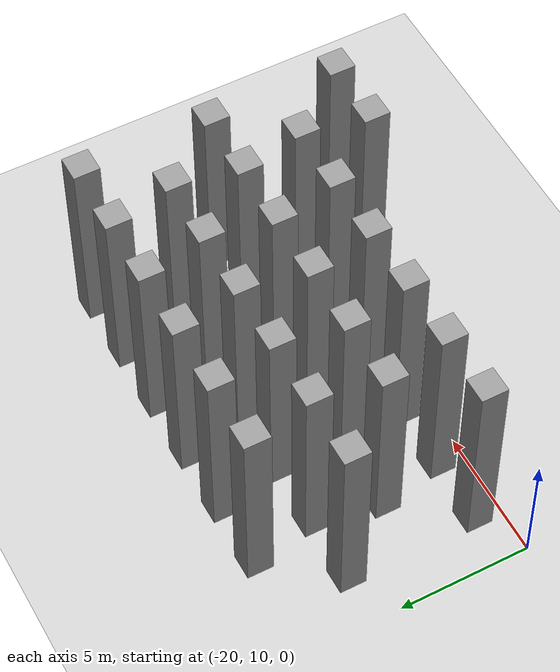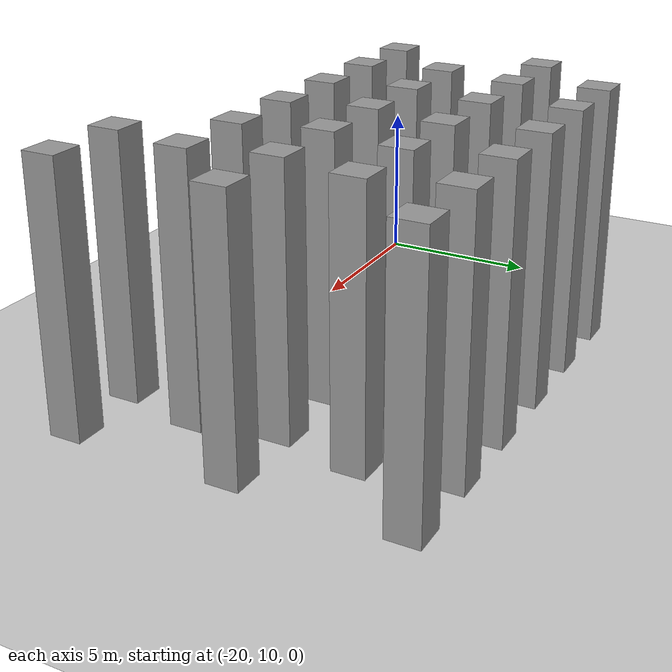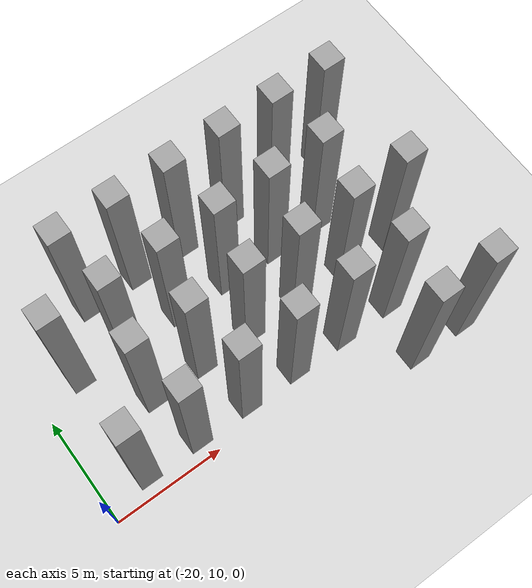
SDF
<sdf version="1.7">
 <world name="default">
  <model name="ground_plane">
   <static>1</static>
   <link name="link">
    <collision name="collision">
     <geometry><plane><normal>0 0 1</normal><size>100 100</size></plane></geometry>
     <surface>
      <contact><collide_bitmask>65535</collide_bitmask></contact>
      <friction><ode><mu>100</mu><mu2>50</mu2></ode></friction>
     </surface>
    </collision>
    <visual name="visual">
     <cast_shadows>0</cast_shadows>
     <geometry><plane><normal>0 0 1</normal><size>100 100</size></plane></geometry>
     <material>
      <script><uri>file://media/materials/scripts/gazebo.material</uri><name>Gazebo/Grey</name></script>
     </material>
    </visual>
   </link>
  </model>
  <model name="unit_box_static165">
   <link name="link">
    <inertial>
     <mass>1</mass>
     <inertia>
      <ixx>0.166667</ixx>
      <ixy>0</ixy>
      <ixz>0</ixz>
      <iyy>0.166667</iyy>
      <iyz>0</iyz>
      <izz>0.166667</izz>
     </inertia>
    </inertial>
    <visual name="visual">
     <geometry><box><size>1 1 8</size></box></geometry>
     <material>
      <script><name>Gazebo/Grey</name><uri>file://media/materials/scripts/gazebo.material</uri></script>
      <shader type="pixel"/>
     </material>
    </visual>
    <collision name="collision">
     <geometry><box><size>1 1 8</size></box></geometry>
     <surface>
      <friction>
       <ode><mu>1</mu><mu2>1</mu2><fdir1>0 0 0</fdir1><slip1>0</slip1><slip2>0</slip2></ode>
       <torsional>
        <coefficient>1</coefficient>
        <patch_radius>0</patch_radius>
        <surface_radius>0</surface_radius>
        <use_patch_radius>1</use_patch_radius>
        <ode><slip>0</slip></ode>
       </torsional>
      </friction>
      <bounce><restitution_coefficient>0</restitution_coefficient><threshold>1e+06</threshold></bounce>
      <contact>
       <collide_without_contact>0</collide_without_contact>
       <collide_without_contact_bitmask>1</collide_without_contact_bitmask>
       <collide_bitmask>1</collide_bitmask>
       <ode>
        <soft_cfm>0</soft_cfm>
        <soft_erp>0.2</soft_erp>
        <kp>1e+13</kp>
        <kd>1</kd>
        <max_vel>0.01</max_vel>
        <min_depth>0</min_depth>
       </ode>
       <bullet>
        <split_impulse>1</split_impulse>
        <split_impulse_penetration_threshold>-0.01</split_impulse_penetration_threshold>
        <soft_cfm>0</soft_cfm>
        <soft_erp>0.2</soft_erp>
        <kp>1e+13</kp>
        <kd>1</kd>
       </bullet>
      </contact>
     </surface>
    </collision>
   </link>
   <static>1</static>
   <pose>-6 8.5 4 0 -0 0</pose>
  </model>
  <model name="unit_box_static166">
   <link name="link">
    <inertial>
     <mass>1</mass>
     <inertia>
      <ixx>0.166667</ixx>
      <ixy>0</ixy>
      <ixz>0</ixz>
      <iyy>0.166667</iyy>
      <iyz>0</iyz>
      <izz>0.166667</izz>
     </inertia>
    </inertial>
    <visual name="visual">
     <geometry><box><size>1 1 8</size></box></geometry>
     <material>
      <script><name>Gazebo/Grey</name><uri>file://media/materials/scripts/gazebo.material</uri></script>
      <shader type="pixel"/>
     </material>
    </visual>
    <collision name="collision">
     <geometry><box><size>1 1 8</size></box></geometry>
     <surface>
      <friction>
       <ode><mu>1</mu><mu2>1</mu2><fdir1>0 0 0</fdir1><slip1>0</slip1><slip2>0</slip2></ode>
       <torsional>
        <coefficient>1</coefficient>
        <patch_radius>0</patch_radius>
        <surface_radius>0</surface_radius>
        <use_patch_radius>1</use_patch_radius>
        <ode><slip>0</slip></ode>
       </torsional>
      </friction>
      <bounce><restitution_coefficient>0</restitution_coefficient><threshold>1e+06</threshold></bounce>
      <contact>
       <collide_without_contact>0</collide_without_contact>
       <collide_without_contact_bitmask>1</collide_without_contact_bitmask>
       <collide_bitmask>1</collide_bitmask>
       <ode>
        <soft_cfm>0</soft_cfm>
        <soft_erp>0.2</soft_erp>
        <kp>1e+13</kp>
        <kd>1</kd>
        <max_vel>0.01</max_vel>
        <min_depth>0</min_depth>
       </ode>
       <bullet>
        <split_impulse>1</split_impulse>
        <split_impulse_penetration_threshold>-0.01</split_impulse_penetration_threshold>
        <soft_cfm>0</soft_cfm>
        <soft_erp>0.2</soft_erp>
        <kp>1e+13</kp>
        <kd>1</kd>
       </bullet>
      </contact>
     </surface>
    </collision>
   </link>
   <static>1</static>
   <pose>-3.5 8.5 4 0 -0 0</pose>
  </model>
  <model name="unit_box_static175">
   <link name="link">
    <inertial>
     <mass>1</mass>
     <inertia>
      <ixx>0.166667</ixx>
      <ixy>0</ixy>
      <ixz>0</ixz>
      <iyy>0.166667</iyy>
      <iyz>0</iyz>
      <izz>0.166667</izz>
     </inertia>
    </inertial>
    <visual name="visual">
     <geometry><box><size>1 1 8</size></box></geometry>
     <material>
      <script><name>Gazebo/Grey</name><uri>file://media/materials/scripts/gazebo.material</uri></script>
      <shader type="pixel"/>
     </material>
    </visual>
    <collision name="collision">
     <geometry><box><size>1 1 8</size></box></geometry>
     <surface>
      <friction>
       <ode><mu>1</mu><mu2>1</mu2><fdir1>0 0 0</fdir1><slip1>0</slip1><slip2>0</slip2></ode>
       <torsional>
        <coefficient>1</coefficient>
        <patch_radius>0</patch_radius>
        <surface_radius>0</surface_radius>
        <use_patch_radius>1</use_patch_radius>
        <ode><slip>0</slip></ode>
       </torsional>
      </friction>
      <bounce><restitution_coefficient>0</restitution_coefficient><threshold>1e+06</threshold></bounce>
      <contact>
       <collide_without_contact>0</collide_without_contact>
       <collide_without_contact_bitmask>1</collide_without_contact_bitmask>
       <collide_bitmask>1</collide_bitmask>
       <ode>
        <soft_cfm>0</soft_cfm>
        <soft_erp>0.2</soft_erp>
        <kp>1e+13</kp>
        <kd>1</kd>
        <max_vel>0.01</max_vel>
        <min_depth>0</min_depth>
       </ode>
       <bullet>
        <split_impulse>1</split_impulse>
        <split_impulse_penetration_threshold>-0.01</split_impulse_penetration_threshold>
        <soft_cfm>0</soft_cfm>
        <soft_erp>0.2</soft_erp>
        <kp>1e+13</kp>
        <kd>1</kd>
       </bullet>
      </contact>
     </surface>
    </collision>
   </link>
   <static>1</static>
   <pose>-18 11 4 0 -0 0</pose>
  </model>
  <model name="unit_box_static176">
   <link name="link">
    <inertial>
     <mass>1</mass>
     <inertia>
      <ixx>0.166667</ixx>
      <ixy>0</ixy>
      <ixz>0</ixz>
      <iyy>0.166667</iyy>
      <iyz>0</iyz>
      <izz>0.166667</izz>
     </inertia>
    </inertial>
    <visual name="visual">
     <geometry><box><size>1 1 8</size></box></geometry>
     <material>
      <script><name>Gazebo/Grey</name><uri>file://media/materials/scripts/gazebo.material</uri></script>
      <shader type="pixel"/>
     </material>
    </visual>
    <collision name="collision">
     <geometry><box><size>1 1 8</size></box></geometry>
     <surface>
      <friction>
       <ode><mu>1</mu><mu2>1</mu2><fdir1>0 0 0</fdir1><slip1>0</slip1><slip2>0</slip2></ode>
       <torsional>
        <coefficient>1</coefficient>
        <patch_radius>0</patch_radius>
        <surface_radius>0</surface_radius>
        <use_patch_radius>1</use_patch_radius>
        <ode><slip>0</slip></ode>
       </torsional>
      </friction>
      <bounce><restitution_coefficient>0</restitution_coefficient><threshold>1e+06</threshold></bounce>
      <contact>
       <collide_without_contact>0</collide_without_contact>
       <collide_without_contact_bitmask>1</collide_without_contact_bitmask>
       <collide_bitmask>1</collide_bitmask>
       <ode>
        <soft_cfm>0</soft_cfm>
        <soft_erp>0.2</soft_erp>
        <kp>1e+13</kp>
        <kd>1</kd>
        <max_vel>0.01</max_vel>
        <min_depth>0</min_depth>
       </ode>
       <bullet>
        <split_impulse>1</split_impulse>
        <split_impulse_penetration_threshold>-0.01</split_impulse_penetration_threshold>
        <soft_cfm>0</soft_cfm>
        <soft_erp>0.2</soft_erp>
        <kp>1e+13</kp>
        <kd>1</kd>
       </bullet>
      </contact>
     </surface>
    </collision>
   </link>
   <static>1</static>
   <pose>-15.5 11 4 0 -0 0</pose>
  </model>
  <model name="unit_box_static177">
   <link name="link">
    <inertial>
     <mass>1</mass>
     <inertia>
      <ixx>0.166667</ixx>
      <ixy>0</ixy>
      <ixz>0</ixz>
      <iyy>0.166667</iyy>
      <iyz>0</iyz>
      <izz>0.166667</izz>
     </inertia>
    </inertial>
    <visual name="visual">
     <geometry><box><size>1 1 8</size></box></geometry>
     <material>
      <script><name>Gazebo/Grey</name><uri>file://media/materials/scripts/gazebo.material</uri></script>
      <shader type="pixel"/>
     </material>
    </visual>
    <collision name="collision">
     <geometry><box><size>1 1 8</size></box></geometry>
     <surface>
      <friction>
       <ode><mu>1</mu><mu2>1</mu2><fdir1>0 0 0</fdir1><slip1>0</slip1><slip2>0</slip2></ode>
       <torsional>
        <coefficient>1</coefficient>
        <patch_radius>0</patch_radius>
        <surface_radius>0</surface_radius>
        <use_patch_radius>1</use_patch_radius>
        <ode><slip>0</slip></ode>
       </torsional>
      </friction>
      <bounce><restitution_coefficient>0</restitution_coefficient><threshold>1e+06</threshold></bounce>
      <contact>
       <collide_without_contact>0</collide_without_contact>
       <collide_without_contact_bitmask>1</collide_without_contact_bitmask>
       <collide_bitmask>1</collide_bitmask>
       <ode>
        <soft_cfm>0</soft_cfm>
        <soft_erp>0.2</soft_erp>
        <kp>1e+13</kp>
        <kd>1</kd>
        <max_vel>0.01</max_vel>
        <min_depth>0</min_depth>
       </ode>
       <bullet>
        <split_impulse>1</split_impulse>
        <split_impulse_penetration_threshold>-0.01</split_impulse_penetration_threshold>
        <soft_cfm>0</soft_cfm>
        <soft_erp>0.2</soft_erp>
        <kp>1e+13</kp>
        <kd>1</kd>
       </bullet>
      </contact>
     </surface>
    </collision>
   </link>
   <static>1</static>
   <pose>-13 11 4 0 -0 0</pose>
  </model>
  <model name="unit_box_static178">
   <link name="link">
    <inertial>
     <mass>1</mass>
     <inertia>
      <ixx>0.166667</ixx>
      <ixy>0</ixy>
      <ixz>0</ixz>
      <iyy>0.166667</iyy>
      <iyz>0</iyz>
      <izz>0.166667</izz>
     </inertia>
    </inertial>
    <visual name="visual">
     <geometry><box><size>1 1 8</size></box></geometry>
     <material>
      <script><name>Gazebo/Grey</name><uri>file://media/materials/scripts/gazebo.material</uri></script>
      <shader type="pixel"/>
     </material>
    </visual>
    <collision name="collision">
     <geometry><box><size>1 1 8</size></box></geometry>
     <surface>
      <friction>
       <ode><mu>1</mu><mu2>1</mu2><fdir1>0 0 0</fdir1><slip1>0</slip1><slip2>0</slip2></ode>
       <torsional>
        <coefficient>1</coefficient>
        <patch_radius>0</patch_radius>
        <surface_radius>0</surface_radius>
        <use_patch_radius>1</use_patch_radius>
        <ode><slip>0</slip></ode>
       </torsional>
      </friction>
      <bounce><restitution_coefficient>0</restitution_coefficient><threshold>1e+06</threshold></bounce>
      <contact>
       <collide_without_contact>0</collide_without_contact>
       <collide_without_contact_bitmask>1</collide_without_contact_bitmask>
       <collide_bitmask>1</collide_bitmask>
       <ode>
        <soft_cfm>0</soft_cfm>
        <soft_erp>0.2</soft_erp>
        <kp>1e+13</kp>
        <kd>1</kd>
        <max_vel>0.01</max_vel>
        <min_depth>0</min_depth>
       </ode>
       <bullet>
        <split_impulse>1</split_impulse>
        <split_impulse_penetration_threshold>-0.01</split_impulse_penetration_threshold>
        <soft_cfm>0</soft_cfm>
        <soft_erp>0.2</soft_erp>
        <kp>1e+13</kp>
        <kd>1</kd>
       </bullet>
      </contact>
     </surface>
    </collision>
   </link>
   <static>1</static>
   <pose>-10.5 11 4 0 -0 0</pose>
  </model>
  <model name="unit_box_static179">
   <link name="link">
    <inertial>
     <mass>1</mass>
     <inertia>
      <ixx>0.166667</ixx>
      <ixy>0</ixy>
      <ixz>0</ixz>
      <iyy>0.166667</iyy>
      <iyz>0</iyz>
      <izz>0.166667</izz>
     </inertia>
    </inertial>
    <visual name="visual">
     <geometry><box><size>1 1 8</size></box></geometry>
     <material>
      <script><name>Gazebo/Grey</name><uri>file://media/materials/scripts/gazebo.material</uri></script>
      <shader type="pixel"/>
     </material>
    </visual>
    <collision name="collision">
     <geometry><box><size>1 1 8</size></box></geometry>
     <surface>
      <friction>
       <ode><mu>1</mu><mu2>1</mu2><fdir1>0 0 0</fdir1><slip1>0</slip1><slip2>0</slip2></ode>
       <torsional>
        <coefficient>1</coefficient>
        <patch_radius>0</patch_radius>
        <surface_radius>0</surface_radius>
        <use_patch_radius>1</use_patch_radius>
        <ode><slip>0</slip></ode>
       </torsional>
      </friction>
      <bounce><restitution_coefficient>0</restitution_coefficient><threshold>1e+06</threshold></bounce>
      <contact>
       <collide_without_contact>0</collide_without_contact>
       <collide_without_contact_bitmask>1</collide_without_contact_bitmask>
       <collide_bitmask>1</collide_bitmask>
       <ode>
        <soft_cfm>0</soft_cfm>
        <soft_erp>0.2</soft_erp>
        <kp>1e+13</kp>
        <kd>1</kd>
        <max_vel>0.01</max_vel>
        <min_depth>0</min_depth>
       </ode>
       <bullet>
        <split_impulse>1</split_impulse>
        <split_impulse_penetration_threshold>-0.01</split_impulse_penetration_threshold>
        <soft_cfm>0</soft_cfm>
        <soft_erp>0.2</soft_erp>
        <kp>1e+13</kp>
        <kd>1</kd>
       </bullet>
      </contact>
     </surface>
    </collision>
   </link>
   <static>1</static>
   <pose>-8 11 4 0 -0 0</pose>
  </model>
  <model name="unit_box_static180">
   <link name="link">
    <inertial>
     <mass>1</mass>
     <inertia>
      <ixx>0.166667</ixx>
      <ixy>0</ixy>
      <ixz>0</ixz>
      <iyy>0.166667</iyy>
      <iyz>0</iyz>
      <izz>0.166667</izz>
     </inertia>
    </inertial>
    <visual name="visual">
     <geometry><box><size>1 1 8</size></box></geometry>
     <material>
      <script><name>Gazebo/Grey</name><uri>file://media/materials/scripts/gazebo.material</uri></script>
      <shader type="pixel"/>
     </material>
    </visual>
    <collision name="collision">
     <geometry><box><size>1 1 8</size></box></geometry>
     <surface>
      <friction>
       <ode><mu>1</mu><mu2>1</mu2><fdir1>0 0 0</fdir1><slip1>0</slip1><slip2>0</slip2></ode>
       <torsional>
        <coefficient>1</coefficient>
        <patch_radius>0</patch_radius>
        <surface_radius>0</surface_radius>
        <use_patch_radius>1</use_patch_radius>
        <ode><slip>0</slip></ode>
       </torsional>
      </friction>
      <bounce><restitution_coefficient>0</restitution_coefficient><threshold>1e+06</threshold></bounce>
      <contact>
       <collide_without_contact>0</collide_without_contact>
       <collide_without_contact_bitmask>1</collide_without_contact_bitmask>
       <collide_bitmask>1</collide_bitmask>
       <ode>
        <soft_cfm>0</soft_cfm>
        <soft_erp>0.2</soft_erp>
        <kp>1e+13</kp>
        <kd>1</kd>
        <max_vel>0.01</max_vel>
        <min_depth>0</min_depth>
       </ode>
       <bullet>
        <split_impulse>1</split_impulse>
        <split_impulse_penetration_threshold>-0.01</split_impulse_penetration_threshold>
        <soft_cfm>0</soft_cfm>
        <soft_erp>0.2</soft_erp>
        <kp>1e+13</kp>
        <kd>1</kd>
       </bullet>
      </contact>
     </surface>
    </collision>
   </link>
   <static>1</static>
   <pose>-5.5 11 4 0 -0 0</pose>
  </model>
  <model name="unit_box_static190">
   <link name="link">
    <inertial>
     <mass>1</mass>
     <inertia>
      <ixx>0.166667</ixx>
      <ixy>0</ixy>
      <ixz>0</ixz>
      <iyy>0.166667</iyy>
      <iyz>0</iyz>
      <izz>0.166667</izz>
     </inertia>
    </inertial>
    <visual name="visual">
     <geometry><box><size>1 1 8</size></box></geometry>
     <material>
      <script><name>Gazebo/Grey</name><uri>file://media/materials/scripts/gazebo.material</uri></script>
      <shader type="pixel"/>
     </material>
    </visual>
    <collision name="collision">
     <geometry><box><size>1 1 8</size></box></geometry>
     <surface>
      <friction>
       <ode><mu>1</mu><mu2>1</mu2><fdir1>0 0 0</fdir1><slip1>0</slip1><slip2>0</slip2></ode>
       <torsional>
        <coefficient>1</coefficient>
        <patch_radius>0</patch_radius>
        <surface_radius>0</surface_radius>
        <use_patch_radius>1</use_patch_radius>
        <ode><slip>0</slip></ode>
       </torsional>
      </friction>
      <bounce><restitution_coefficient>0</restitution_coefficient><threshold>1e+06</threshold></bounce>
      <contact>
       <collide_without_contact>0</collide_without_contact>
       <collide_without_contact_bitmask>1</collide_without_contact_bitmask>
       <collide_bitmask>1</collide_bitmask>
       <ode>
        <soft_cfm>0</soft_cfm>
        <soft_erp>0.2</soft_erp>
        <kp>1e+13</kp>
        <kd>1</kd>
        <max_vel>0.01</max_vel>
        <min_depth>0</min_depth>
       </ode>
       <bullet>
        <split_impulse>1</split_impulse>
        <split_impulse_penetration_threshold>-0.01</split_impulse_penetration_threshold>
        <soft_cfm>0</soft_cfm>
        <soft_erp>0.2</soft_erp>
        <kp>1e+13</kp>
        <kd>1</kd>
       </bullet>
      </contact>
     </surface>
    </collision>
   </link>
   <static>1</static>
   <pose>-16 13.5 4 0 -0 0</pose>
  </model>
  <model name="unit_box_static191">
   <link name="link">
    <inertial>
     <mass>1</mass>
     <inertia>
      <ixx>0.166667</ixx>
      <ixy>0</ixy>
      <ixz>0</ixz>
      <iyy>0.166667</iyy>
      <iyz>0</iyz>
      <izz>0.166667</izz>
     </inertia>
    </inertial>
    <visual name="visual">
     <geometry><box><size>1 1 8</size></box></geometry>
     <material>
      <script><name>Gazebo/Grey</name><uri>file://media/materials/scripts/gazebo.material</uri></script>
      <shader type="pixel"/>
     </material>
    </visual>
    <collision name="collision">
     <geometry><box><size>1 1 8</size></box></geometry>
     <surface>
      <friction>
       <ode><mu>1</mu><mu2>1</mu2><fdir1>0 0 0</fdir1><slip1>0</slip1><slip2>0</slip2></ode>
       <torsional>
        <coefficient>1</coefficient>
        <patch_radius>0</patch_radius>
        <surface_radius>0</surface_radius>
        <use_patch_radius>1</use_patch_radius>
        <ode><slip>0</slip></ode>
       </torsional>
      </friction>
      <bounce><restitution_coefficient>0</restitution_coefficient><threshold>1e+06</threshold></bounce>
      <contact>
       <collide_without_contact>0</collide_without_contact>
       <collide_without_contact_bitmask>1</collide_without_contact_bitmask>
       <collide_bitmask>1</collide_bitmask>
       <ode>
        <soft_cfm>0</soft_cfm>
        <soft_erp>0.2</soft_erp>
        <kp>1e+13</kp>
        <kd>1</kd>
        <max_vel>0.01</max_vel>
        <min_depth>0</min_depth>
       </ode>
       <bullet>
        <split_impulse>1</split_impulse>
        <split_impulse_penetration_threshold>-0.01</split_impulse_penetration_threshold>
        <soft_cfm>0</soft_cfm>
        <soft_erp>0.2</soft_erp>
        <kp>1e+13</kp>
        <kd>1</kd>
       </bullet>
      </contact>
     </surface>
    </collision>
   </link>
   <static>1</static>
   <pose>-13.5 13.5 4 0 -0 0</pose>
  </model>
  <model name="unit_box_static192">
   <link name="link">
    <inertial>
     <mass>1</mass>
     <inertia>
      <ixx>0.166667</ixx>
      <ixy>0</ixy>
      <ixz>0</ixz>
      <iyy>0.166667</iyy>
      <iyz>0</iyz>
      <izz>0.166667</izz>
     </inertia>
    </inertial>
    <visual name="visual">
     <geometry><box><size>1 1 8</size></box></geometry>
     <material>
      <script><name>Gazebo/Grey</name><uri>file://media/materials/scripts/gazebo.material</uri></script>
      <shader type="pixel"/>
     </material>
    </visual>
    <collision name="collision">
     <geometry><box><size>1 1 8</size></box></geometry>
     <surface>
      <friction>
       <ode><mu>1</mu><mu2>1</mu2><fdir1>0 0 0</fdir1><slip1>0</slip1><slip2>0</slip2></ode>
       <torsional>
        <coefficient>1</coefficient>
        <patch_radius>0</patch_radius>
        <surface_radius>0</surface_radius>
        <use_patch_radius>1</use_patch_radius>
        <ode><slip>0</slip></ode>
       </torsional>
      </friction>
      <bounce><restitution_coefficient>0</restitution_coefficient><threshold>1e+06</threshold></bounce>
      <contact>
       <collide_without_contact>0</collide_without_contact>
       <collide_without_contact_bitmask>1</collide_without_contact_bitmask>
       <collide_bitmask>1</collide_bitmask>
       <ode>
        <soft_cfm>0</soft_cfm>
        <soft_erp>0.2</soft_erp>
        <kp>1e+13</kp>
        <kd>1</kd>
        <max_vel>0.01</max_vel>
        <min_depth>0</min_depth>
       </ode>
       <bullet>
        <split_impulse>1</split_impulse>
        <split_impulse_penetration_threshold>-0.01</split_impulse_penetration_threshold>
        <soft_cfm>0</soft_cfm>
        <soft_erp>0.2</soft_erp>
        <kp>1e+13</kp>
        <kd>1</kd>
       </bullet>
      </contact>
     </surface>
    </collision>
   </link>
   <static>1</static>
   <pose>-11 13.5 4 0 -0 0</pose>
  </model>
  <model name="unit_box_static193">
   <link name="link">
    <inertial>
     <mass>1</mass>
     <inertia>
      <ixx>0.166667</ixx>
      <ixy>0</ixy>
      <ixz>0</ixz>
      <iyy>0.166667</iyy>
      <iyz>0</iyz>
      <izz>0.166667</izz>
     </inertia>
    </inertial>
    <visual name="visual">
     <geometry><box><size>1 1 8</size></box></geometry>
     <material>
      <script><name>Gazebo/Grey</name><uri>file://media/materials/scripts/gazebo.material</uri></script>
      <shader type="pixel"/>
     </material>
    </visual>
    <collision name="collision">
     <geometry><box><size>1 1 8</size></box></geometry>
     <surface>
      <friction>
       <ode><mu>1</mu><mu2>1</mu2><fdir1>0 0 0</fdir1><slip1>0</slip1><slip2>0</slip2></ode>
       <torsional>
        <coefficient>1</coefficient>
        <patch_radius>0</patch_radius>
        <surface_radius>0</surface_radius>
        <use_patch_radius>1</use_patch_radius>
        <ode><slip>0</slip></ode>
       </torsional>
      </friction>
      <bounce><restitution_coefficient>0</restitution_coefficient><threshold>1e+06</threshold></bounce>
      <contact>
       <collide_without_contact>0</collide_without_contact>
       <collide_without_contact_bitmask>1</collide_without_contact_bitmask>
       <collide_bitmask>1</collide_bitmask>
       <ode>
        <soft_cfm>0</soft_cfm>
        <soft_erp>0.2</soft_erp>
        <kp>1e+13</kp>
        <kd>1</kd>
        <max_vel>0.01</max_vel>
        <min_depth>0</min_depth>
       </ode>
       <bullet>
        <split_impulse>1</split_impulse>
        <split_impulse_penetration_threshold>-0.01</split_impulse_penetration_threshold>
        <soft_cfm>0</soft_cfm>
        <soft_erp>0.2</soft_erp>
        <kp>1e+13</kp>
        <kd>1</kd>
       </bullet>
      </contact>
     </surface>
    </collision>
   </link>
   <static>1</static>
   <pose>-8.5 13.5 4 0 -0 0</pose>
  </model>
  <model name="unit_box_static194">
   <link name="link">
    <inertial>
     <mass>1</mass>
     <inertia>
      <ixx>0.166667</ixx>
      <ixy>0</ixy>
      <ixz>0</ixz>
      <iyy>0.166667</iyy>
      <iyz>0</iyz>
      <izz>0.166667</izz>
     </inertia>
    </inertial>
    <visual name="visual">
     <geometry><box><size>1 1 8</size></box></geometry>
     <material>
      <script><name>Gazebo/Grey</name><uri>file://media/materials/scripts/gazebo.material</uri></script>
      <shader type="pixel"/>
     </material>
    </visual>
    <collision name="collision">
     <geometry><box><size>1 1 8</size></box></geometry>
     <surface>
      <friction>
       <ode><mu>1</mu><mu2>1</mu2><fdir1>0 0 0</fdir1><slip1>0</slip1><slip2>0</slip2></ode>
       <torsional>
        <coefficient>1</coefficient>
        <patch_radius>0</patch_radius>
        <surface_radius>0</surface_radius>
        <use_patch_radius>1</use_patch_radius>
        <ode><slip>0</slip></ode>
       </torsional>
      </friction>
      <bounce><restitution_coefficient>0</restitution_coefficient><threshold>1e+06</threshold></bounce>
      <contact>
       <collide_without_contact>0</collide_without_contact>
       <collide_without_contact_bitmask>1</collide_without_contact_bitmask>
       <collide_bitmask>1</collide_bitmask>
       <ode>
        <soft_cfm>0</soft_cfm>
        <soft_erp>0.2</soft_erp>
        <kp>1e+13</kp>
        <kd>1</kd>
        <max_vel>0.01</max_vel>
        <min_depth>0</min_depth>
       </ode>
       <bullet>
        <split_impulse>1</split_impulse>
        <split_impulse_penetration_threshold>-0.01</split_impulse_penetration_threshold>
        <soft_cfm>0</soft_cfm>
        <soft_erp>0.2</soft_erp>
        <kp>1e+13</kp>
        <kd>1</kd>
       </bullet>
      </contact>
     </surface>
    </collision>
   </link>
   <static>1</static>
   <pose>-6 13.5 4 0 -0 0</pose>
  </model>
  <model name="unit_box_static195">
   <link name="link">
    <inertial>
     <mass>1</mass>
     <inertia>
      <ixx>0.166667</ixx>
      <ixy>0</ixy>
      <ixz>0</ixz>
      <iyy>0.166667</iyy>
      <iyz>0</iyz>
      <izz>0.166667</izz>
     </inertia>
    </inertial>
    <visual name="visual">
     <geometry><box><size>1 1 8</size></box></geometry>
     <material>
      <script><name>Gazebo/Grey</name><uri>file://media/materials/scripts/gazebo.material</uri></script>
      <shader type="pixel"/>
     </material>
    </visual>
    <collision name="collision">
     <geometry><box><size>1 1 8</size></box></geometry>
     <surface>
      <friction>
       <ode><mu>1</mu><mu2>1</mu2><fdir1>0 0 0</fdir1><slip1>0</slip1><slip2>0</slip2></ode>
       <torsional>
        <coefficient>1</coefficient>
        <patch_radius>0</patch_radius>
        <surface_radius>0</surface_radius>
        <use_patch_radius>1</use_patch_radius>
        <ode><slip>0</slip></ode>
       </torsional>
      </friction>
      <bounce><restitution_coefficient>0</restitution_coefficient><threshold>1e+06</threshold></bounce>
      <contact>
       <collide_without_contact>0</collide_without_contact>
       <collide_without_contact_bitmask>1</collide_without_contact_bitmask>
       <collide_bitmask>1</collide_bitmask>
       <ode>
        <soft_cfm>0</soft_cfm>
        <soft_erp>0.2</soft_erp>
        <kp>1e+13</kp>
        <kd>1</kd>
        <max_vel>0.01</max_vel>
        <min_depth>0</min_depth>
       </ode>
       <bullet>
        <split_impulse>1</split_impulse>
        <split_impulse_penetration_threshold>-0.01</split_impulse_penetration_threshold>
        <soft_cfm>0</soft_cfm>
        <soft_erp>0.2</soft_erp>
        <kp>1e+13</kp>
        <kd>1</kd>
       </bullet>
      </contact>
     </surface>
    </collision>
   </link>
   <static>1</static>
   <pose>-3.5 13.5 4 0 -0 0</pose>
  </model>
  <model name="unit_box_static204">
   <link name="link">
    <inertial>
     <mass>1</mass>
     <inertia>
      <ixx>0.166667</ixx>
      <ixy>0</ixy>
      <ixz>0</ixz>
      <iyy>0.166667</iyy>
      <iyz>0</iyz>
      <izz>0.166667</izz>
     </inertia>
    </inertial>
    <visual name="visual">
     <geometry><box><size>1 1 8</size></box></geometry>
     <material>
      <script><name>Gazebo/Grey</name><uri>file://media/materials/scripts/gazebo.material</uri></script>
      <shader type="pixel"/>
     </material>
    </visual>
    <collision name="collision">
     <geometry><box><size>1 1 8</size></box></geometry>
     <surface>
      <friction>
       <ode><mu>1</mu><mu2>1</mu2><fdir1>0 0 0</fdir1><slip1>0</slip1><slip2>0</slip2></ode>
       <torsional>
        <coefficient>1</coefficient>
        <patch_radius>0</patch_radius>
        <surface_radius>0</surface_radius>
        <use_patch_radius>1</use_patch_radius>
        <ode><slip>0</slip></ode>
       </torsional>
      </friction>
      <bounce><restitution_coefficient>0</restitution_coefficient><threshold>1e+06</threshold></bounce>
      <contact>
       <collide_without_contact>0</collide_without_contact>
       <collide_without_contact_bitmask>1</collide_without_contact_bitmask>
       <collide_bitmask>1</collide_bitmask>
       <ode>
        <soft_cfm>0</soft_cfm>
        <soft_erp>0.2</soft_erp>
        <kp>1e+13</kp>
        <kd>1</kd>
        <max_vel>0.01</max_vel>
        <min_depth>0</min_depth>
       </ode>
       <bullet>
        <split_impulse>1</split_impulse>
        <split_impulse_penetration_threshold>-0.01</split_impulse_penetration_threshold>
        <soft_cfm>0</soft_cfm>
        <soft_erp>0.2</soft_erp>
        <kp>1e+13</kp>
        <kd>1</kd>
       </bullet>
      </contact>
     </surface>
    </collision>
   </link>
   <static>1</static>
   <pose>-18 16 4 0 -0 0</pose>
  </model>
  <model name="unit_box_static205">
   <link name="link">
    <inertial>
     <mass>1</mass>
     <inertia>
      <ixx>0.166667</ixx>
      <ixy>0</ixy>
      <ixz>0</ixz>
      <iyy>0.166667</iyy>
      <iyz>0</iyz>
      <izz>0.166667</izz>
     </inertia>
    </inertial>
    <visual name="visual">
     <geometry><box><size>1 1 8</size></box></geometry>
     <material>
      <script><name>Gazebo/Grey</name><uri>file://media/materials/scripts/gazebo.material</uri></script>
      <shader type="pixel"/>
     </material>
    </visual>
    <collision name="collision">
     <geometry><box><size>1 1 8</size></box></geometry>
     <surface>
      <friction>
       <ode><mu>1</mu><mu2>1</mu2><fdir1>0 0 0</fdir1><slip1>0</slip1><slip2>0</slip2></ode>
       <torsional>
        <coefficient>1</coefficient>
        <patch_radius>0</patch_radius>
        <surface_radius>0</surface_radius>
        <use_patch_radius>1</use_patch_radius>
        <ode><slip>0</slip></ode>
       </torsional>
      </friction>
      <bounce><restitution_coefficient>0</restitution_coefficient><threshold>1e+06</threshold></bounce>
      <contact>
       <collide_without_contact>0</collide_without_contact>
       <collide_without_contact_bitmask>1</collide_without_contact_bitmask>
       <collide_bitmask>1</collide_bitmask>
       <ode>
        <soft_cfm>0</soft_cfm>
        <soft_erp>0.2</soft_erp>
        <kp>1e+13</kp>
        <kd>1</kd>
        <max_vel>0.01</max_vel>
        <min_depth>0</min_depth>
       </ode>
       <bullet>
        <split_impulse>1</split_impulse>
        <split_impulse_penetration_threshold>-0.01</split_impulse_penetration_threshold>
        <soft_cfm>0</soft_cfm>
        <soft_erp>0.2</soft_erp>
        <kp>1e+13</kp>
        <kd>1</kd>
       </bullet>
      </contact>
     </surface>
    </collision>
   </link>
   <static>1</static>
   <pose>-15.5 16 4 0 -0 0</pose>
  </model>
  <model name="unit_box_static206">
   <link name="link">
    <inertial>
     <mass>1</mass>
     <inertia>
      <ixx>0.166667</ixx>
      <ixy>0</ixy>
      <ixz>0</ixz>
      <iyy>0.166667</iyy>
      <iyz>0</iyz>
      <izz>0.166667</izz>
     </inertia>
    </inertial>
    <visual name="visual">
     <geometry><box><size>1 1 8</size></box></geometry>
     <material>
      <script><name>Gazebo/Grey</name><uri>file://media/materials/scripts/gazebo.material</uri></script>
      <shader type="pixel"/>
     </material>
    </visual>
    <collision name="collision">
     <geometry><box><size>1 1 8</size></box></geometry>
     <surface>
      <friction>
       <ode><mu>1</mu><mu2>1</mu2><fdir1>0 0 0</fdir1><slip1>0</slip1><slip2>0</slip2></ode>
       <torsional>
        <coefficient>1</coefficient>
        <patch_radius>0</patch_radius>
        <surface_radius>0</surface_radius>
        <use_patch_radius>1</use_patch_radius>
        <ode><slip>0</slip></ode>
       </torsional>
      </friction>
      <bounce><restitution_coefficient>0</restitution_coefficient><threshold>1e+06</threshold></bounce>
      <contact>
       <collide_without_contact>0</collide_without_contact>
       <collide_without_contact_bitmask>1</collide_without_contact_bitmask>
       <collide_bitmask>1</collide_bitmask>
       <ode>
        <soft_cfm>0</soft_cfm>
        <soft_erp>0.2</soft_erp>
        <kp>1e+13</kp>
        <kd>1</kd>
        <max_vel>0.01</max_vel>
        <min_depth>0</min_depth>
       </ode>
       <bullet>
        <split_impulse>1</split_impulse>
        <split_impulse_penetration_threshold>-0.01</split_impulse_penetration_threshold>
        <soft_cfm>0</soft_cfm>
        <soft_erp>0.2</soft_erp>
        <kp>1e+13</kp>
        <kd>1</kd>
       </bullet>
      </contact>
     </surface>
    </collision>
   </link>
   <static>1</static>
   <pose>-13 16 4 0 -0 0</pose>
  </model>
  <model name="unit_box_static207">
   <link name="link">
    <inertial>
     <mass>1</mass>
     <inertia>
      <ixx>0.166667</ixx>
      <ixy>0</ixy>
      <ixz>0</ixz>
      <iyy>0.166667</iyy>
      <iyz>0</iyz>
      <izz>0.166667</izz>
     </inertia>
    </inertial>
    <visual name="visual">
     <geometry><box><size>1 1 8</size></box></geometry>
     <material>
      <script><name>Gazebo/Grey</name><uri>file://media/materials/scripts/gazebo.material</uri></script>
      <shader type="pixel"/>
     </material>
    </visual>
    <collision name="collision">
     <geometry><box><size>1 1 8</size></box></geometry>
     <surface>
      <friction>
       <ode><mu>1</mu><mu2>1</mu2><fdir1>0 0 0</fdir1><slip1>0</slip1><slip2>0</slip2></ode>
       <torsional>
        <coefficient>1</coefficient>
        <patch_radius>0</patch_radius>
        <surface_radius>0</surface_radius>
        <use_patch_radius>1</use_patch_radius>
        <ode><slip>0</slip></ode>
       </torsional>
      </friction>
      <bounce><restitution_coefficient>0</restitution_coefficient><threshold>1e+06</threshold></bounce>
      <contact>
       <collide_without_contact>0</collide_without_contact>
       <collide_without_contact_bitmask>1</collide_without_contact_bitmask>
       <collide_bitmask>1</collide_bitmask>
       <ode>
        <soft_cfm>0</soft_cfm>
        <soft_erp>0.2</soft_erp>
        <kp>1e+13</kp>
        <kd>1</kd>
        <max_vel>0.01</max_vel>
        <min_depth>0</min_depth>
       </ode>
       <bullet>
        <split_impulse>1</split_impulse>
        <split_impulse_penetration_threshold>-0.01</split_impulse_penetration_threshold>
        <soft_cfm>0</soft_cfm>
        <soft_erp>0.2</soft_erp>
        <kp>1e+13</kp>
        <kd>1</kd>
       </bullet>
      </contact>
     </surface>
    </collision>
   </link>
   <static>1</static>
   <pose>-10.5 16 4 0 -0 0</pose>
  </model>
  <model name="unit_box_static208">
   <link name="link">
    <inertial>
     <mass>1</mass>
     <inertia>
      <ixx>0.166667</ixx>
      <ixy>0</ixy>
      <ixz>0</ixz>
      <iyy>0.166667</iyy>
      <iyz>0</iyz>
      <izz>0.166667</izz>
     </inertia>
    </inertial>
    <visual name="visual">
     <geometry><box><size>1 1 8</size></box></geometry>
     <material>
      <script><name>Gazebo/Grey</name><uri>file://media/materials/scripts/gazebo.material</uri></script>
      <shader type="pixel"/>
     </material>
    </visual>
    <collision name="collision">
     <geometry><box><size>1 1 8</size></box></geometry>
     <surface>
      <friction>
       <ode><mu>1</mu><mu2>1</mu2><fdir1>0 0 0</fdir1><slip1>0</slip1><slip2>0</slip2></ode>
       <torsional>
        <coefficient>1</coefficient>
        <patch_radius>0</patch_radius>
        <surface_radius>0</surface_radius>
        <use_patch_radius>1</use_patch_radius>
        <ode><slip>0</slip></ode>
       </torsional>
      </friction>
      <bounce><restitution_coefficient>0</restitution_coefficient><threshold>1e+06</threshold></bounce>
      <contact>
       <collide_without_contact>0</collide_without_contact>
       <collide_without_contact_bitmask>1</collide_without_contact_bitmask>
       <collide_bitmask>1</collide_bitmask>
       <ode>
        <soft_cfm>0</soft_cfm>
        <soft_erp>0.2</soft_erp>
        <kp>1e+13</kp>
        <kd>1</kd>
        <max_vel>0.01</max_vel>
        <min_depth>0</min_depth>
       </ode>
       <bullet>
        <split_impulse>1</split_impulse>
        <split_impulse_penetration_threshold>-0.01</split_impulse_penetration_threshold>
        <soft_cfm>0</soft_cfm>
        <soft_erp>0.2</soft_erp>
        <kp>1e+13</kp>
        <kd>1</kd>
       </bullet>
      </contact>
     </surface>
    </collision>
   </link>
   <static>1</static>
   <pose>-8 16 4 0 -0 0</pose>
  </model>
  <model name="unit_box_static209">
   <link name="link">
    <inertial>
     <mass>1</mass>
     <inertia>
      <ixx>0.166667</ixx>
      <ixy>0</ixy>
      <ixz>0</ixz>
      <iyy>0.166667</iyy>
      <iyz>0</iyz>
      <izz>0.166667</izz>
     </inertia>
    </inertial>
    <visual name="visual">
     <geometry><box><size>1 1 8</size></box></geometry>
     <material>
      <script><name>Gazebo/Grey</name><uri>file://media/materials/scripts/gazebo.material</uri></script>
      <shader type="pixel"/>
     </material>
    </visual>
    <collision name="collision">
     <geometry><box><size>1 1 8</size></box></geometry>
     <surface>
      <friction>
       <ode><mu>1</mu><mu2>1</mu2><fdir1>0 0 0</fdir1><slip1>0</slip1><slip2>0</slip2></ode>
       <torsional>
        <coefficient>1</coefficient>
        <patch_radius>0</patch_radius>
        <surface_radius>0</surface_radius>
        <use_patch_radius>1</use_patch_radius>
        <ode><slip>0</slip></ode>
       </torsional>
      </friction>
      <bounce><restitution_coefficient>0</restitution_coefficient><threshold>1e+06</threshold></bounce>
      <contact>
       <collide_without_contact>0</collide_without_contact>
       <collide_without_contact_bitmask>1</collide_without_contact_bitmask>
       <collide_bitmask>1</collide_bitmask>
       <ode>
        <soft_cfm>0</soft_cfm>
        <soft_erp>0.2</soft_erp>
        <kp>1e+13</kp>
        <kd>1</kd>
        <max_vel>0.01</max_vel>
        <min_depth>0</min_depth>
       </ode>
       <bullet>
        <split_impulse>1</split_impulse>
        <split_impulse_penetration_threshold>-0.01</split_impulse_penetration_threshold>
        <soft_cfm>0</soft_cfm>
        <soft_erp>0.2</soft_erp>
        <kp>1e+13</kp>
        <kd>1</kd>
       </bullet>
      </contact>
     </surface>
    </collision>
   </link>
   <static>1</static>
   <pose>-5.5 16 4 0 -0 0</pose>
  </model>
  <model name="unit_box_static219">
   <link name="link">
    <inertial>
     <mass>1</mass>
     <inertia>
      <ixx>0.166667</ixx>
      <ixy>0</ixy>
      <ixz>0</ixz>
      <iyy>0.166667</iyy>
      <iyz>0</iyz>
      <izz>0.166667</izz>
     </inertia>
    </inertial>
    <visual name="visual">
     <geometry><box><size>1 1 8</size></box></geometry>
     <material>
      <script><name>Gazebo/Grey</name><uri>file://media/materials/scripts/gazebo.material</uri></script>
      <shader type="pixel"/>
     </material>
    </visual>
    <collision name="collision">
     <geometry><box><size>1 1 8</size></box></geometry>
     <surface>
      <friction>
       <ode><mu>1</mu><mu2>1</mu2><fdir1>0 0 0</fdir1><slip1>0</slip1><slip2>0</slip2></ode>
       <torsional>
        <coefficient>1</coefficient>
        <patch_radius>0</patch_radius>
        <surface_radius>0</surface_radius>
        <use_patch_radius>1</use_patch_radius>
        <ode><slip>0</slip></ode>
       </torsional>
      </friction>
      <bounce><restitution_coefficient>0</restitution_coefficient><threshold>1e+06</threshold></bounce>
      <contact>
       <collide_without_contact>0</collide_without_contact>
       <collide_without_contact_bitmask>1</collide_without_contact_bitmask>
       <collide_bitmask>1</collide_bitmask>
       <ode>
        <soft_cfm>0</soft_cfm>
        <soft_erp>0.2</soft_erp>
        <kp>1e+13</kp>
        <kd>1</kd>
        <max_vel>0.01</max_vel>
        <min_depth>0</min_depth>
       </ode>
       <bullet>
        <split_impulse>1</split_impulse>
        <split_impulse_penetration_threshold>-0.01</split_impulse_penetration_threshold>
        <soft_cfm>0</soft_cfm>
        <soft_erp>0.2</soft_erp>
        <kp>1e+13</kp>
        <kd>1</kd>
       </bullet>
      </contact>
     </surface>
    </collision>
   </link>
   <static>1</static>
   <pose>-16 18.5 4 0 -0 0</pose>
  </model>
  <model name="unit_box_static220">
   <link name="link">
    <inertial>
     <mass>1</mass>
     <inertia>
      <ixx>0.166667</ixx>
      <ixy>0</ixy>
      <ixz>0</ixz>
      <iyy>0.166667</iyy>
      <iyz>0</iyz>
      <izz>0.166667</izz>
     </inertia>
    </inertial>
    <visual name="visual">
     <geometry><box><size>1 1 8</size></box></geometry>
     <material>
      <script><name>Gazebo/Grey</name><uri>file://media/materials/scripts/gazebo.material</uri></script>
      <shader type="pixel"/>
     </material>
    </visual>
    <collision name="collision">
     <geometry><box><size>1 1 8</size></box></geometry>
     <surface>
      <friction>
       <ode><mu>1</mu><mu2>1</mu2><fdir1>0 0 0</fdir1><slip1>0</slip1><slip2>0</slip2></ode>
       <torsional>
        <coefficient>1</coefficient>
        <patch_radius>0</patch_radius>
        <surface_radius>0</surface_radius>
        <use_patch_radius>1</use_patch_radius>
        <ode><slip>0</slip></ode>
       </torsional>
      </friction>
      <bounce><restitution_coefficient>0</restitution_coefficient><threshold>1e+06</threshold></bounce>
      <contact>
       <collide_without_contact>0</collide_without_contact>
       <collide_without_contact_bitmask>1</collide_without_contact_bitmask>
       <collide_bitmask>1</collide_bitmask>
       <ode>
        <soft_cfm>0</soft_cfm>
        <soft_erp>0.2</soft_erp>
        <kp>1e+13</kp>
        <kd>1</kd>
        <max_vel>0.01</max_vel>
        <min_depth>0</min_depth>
       </ode>
       <bullet>
        <split_impulse>1</split_impulse>
        <split_impulse_penetration_threshold>-0.01</split_impulse_penetration_threshold>
        <soft_cfm>0</soft_cfm>
        <soft_erp>0.2</soft_erp>
        <kp>1e+13</kp>
        <kd>1</kd>
       </bullet>
      </contact>
     </surface>
    </collision>
   </link>
   <static>1</static>
   <pose>-13.5 18.5 4 0 -0 0</pose>
  </model>
  <model name="unit_box_static221">
   <link name="link">
    <inertial>
     <mass>1</mass>
     <inertia>
      <ixx>0.166667</ixx>
      <ixy>0</ixy>
      <ixz>0</ixz>
      <iyy>0.166667</iyy>
      <iyz>0</iyz>
      <izz>0.166667</izz>
     </inertia>
    </inertial>
    <visual name="visual">
     <geometry><box><size>1 1 8</size></box></geometry>
     <material>
      <script><name>Gazebo/Grey</name><uri>file://media/materials/scripts/gazebo.material</uri></script>
      <shader type="pixel"/>
     </material>
    </visual>
    <collision name="collision">
     <geometry><box><size>1 1 8</size></box></geometry>
     <surface>
      <friction>
       <ode><mu>1</mu><mu2>1</mu2><fdir1>0 0 0</fdir1><slip1>0</slip1><slip2>0</slip2></ode>
       <torsional>
        <coefficient>1</coefficient>
        <patch_radius>0</patch_radius>
        <surface_radius>0</surface_radius>
        <use_patch_radius>1</use_patch_radius>
        <ode><slip>0</slip></ode>
       </torsional>
      </friction>
      <bounce><restitution_coefficient>0</restitution_coefficient><threshold>1e+06</threshold></bounce>
      <contact>
       <collide_without_contact>0</collide_without_contact>
       <collide_without_contact_bitmask>1</collide_without_contact_bitmask>
       <collide_bitmask>1</collide_bitmask>
       <ode>
        <soft_cfm>0</soft_cfm>
        <soft_erp>0.2</soft_erp>
        <kp>1e+13</kp>
        <kd>1</kd>
        <max_vel>0.01</max_vel>
        <min_depth>0</min_depth>
       </ode>
       <bullet>
        <split_impulse>1</split_impulse>
        <split_impulse_penetration_threshold>-0.01</split_impulse_penetration_threshold>
        <soft_cfm>0</soft_cfm>
        <soft_erp>0.2</soft_erp>
        <kp>1e+13</kp>
        <kd>1</kd>
       </bullet>
      </contact>
     </surface>
    </collision>
   </link>
   <static>1</static>
   <pose>-11 18.5 4 0 -0 0</pose>
  </model>
  <model name="unit_box_static222">
   <link name="link">
    <inertial>
     <mass>1</mass>
     <inertia>
      <ixx>0.166667</ixx>
      <ixy>0</ixy>
      <ixz>0</ixz>
      <iyy>0.166667</iyy>
      <iyz>0</iyz>
      <izz>0.166667</izz>
     </inertia>
    </inertial>
    <visual name="visual">
     <geometry><box><size>1 1 8</size></box></geometry>
     <material>
      <script><name>Gazebo/Grey</name><uri>file://media/materials/scripts/gazebo.material</uri></script>
      <shader type="pixel"/>
     </material>
    </visual>
    <collision name="collision">
     <geometry><box><size>1 1 8</size></box></geometry>
     <surface>
      <friction>
       <ode><mu>1</mu><mu2>1</mu2><fdir1>0 0 0</fdir1><slip1>0</slip1><slip2>0</slip2></ode>
       <torsional>
        <coefficient>1</coefficient>
        <patch_radius>0</patch_radius>
        <surface_radius>0</surface_radius>
        <use_patch_radius>1</use_patch_radius>
        <ode><slip>0</slip></ode>
       </torsional>
      </friction>
      <bounce><restitution_coefficient>0</restitution_coefficient><threshold>1e+06</threshold></bounce>
      <contact>
       <collide_without_contact>0</collide_without_contact>
       <collide_without_contact_bitmask>1</collide_without_contact_bitmask>
       <collide_bitmask>1</collide_bitmask>
       <ode>
        <soft_cfm>0</soft_cfm>
        <soft_erp>0.2</soft_erp>
        <kp>1e+13</kp>
        <kd>1</kd>
        <max_vel>0.01</max_vel>
        <min_depth>0</min_depth>
       </ode>
       <bullet>
        <split_impulse>1</split_impulse>
        <split_impulse_penetration_threshold>-0.01</split_impulse_penetration_threshold>
        <soft_cfm>0</soft_cfm>
        <soft_erp>0.2</soft_erp>
        <kp>1e+13</kp>
        <kd>1</kd>
       </bullet>
      </contact>
     </surface>
    </collision>
   </link>
   <static>1</static>
   <pose>-8.5 18.5 4 0 -0 0</pose>
  </model>
  <model name="unit_box_static223">
   <link name="link">
    <inertial>
     <mass>1</mass>
     <inertia>
      <ixx>0.166667</ixx>
      <ixy>0</ixy>
      <ixz>0</ixz>
      <iyy>0.166667</iyy>
      <iyz>0</iyz>
      <izz>0.166667</izz>
     </inertia>
    </inertial>
    <visual name="visual">
     <geometry><box><size>1 1 8</size></box></geometry>
     <material>
      <script><name>Gazebo/Grey</name><uri>file://media/materials/scripts/gazebo.material</uri></script>
      <shader type="pixel"/>
     </material>
    </visual>
    <collision name="collision">
     <geometry><box><size>1 1 8</size></box></geometry>
     <surface>
      <friction>
       <ode><mu>1</mu><mu2>1</mu2><fdir1>0 0 0</fdir1><slip1>0</slip1><slip2>0</slip2></ode>
       <torsional>
        <coefficient>1</coefficient>
        <patch_radius>0</patch_radius>
        <surface_radius>0</surface_radius>
        <use_patch_radius>1</use_patch_radius>
        <ode><slip>0</slip></ode>
       </torsional>
      </friction>
      <bounce><restitution_coefficient>0</restitution_coefficient><threshold>1e+06</threshold></bounce>
      <contact>
       <collide_without_contact>0</collide_without_contact>
       <collide_without_contact_bitmask>1</collide_without_contact_bitmask>
       <collide_bitmask>1</collide_bitmask>
       <ode>
        <soft_cfm>0</soft_cfm>
        <soft_erp>0.2</soft_erp>
        <kp>1e+13</kp>
        <kd>1</kd>
        <max_vel>0.01</max_vel>
        <min_depth>0</min_depth>
       </ode>
       <bullet>
        <split_impulse>1</split_impulse>
        <split_impulse_penetration_threshold>-0.01</split_impulse_penetration_threshold>
        <soft_cfm>0</soft_cfm>
        <soft_erp>0.2</soft_erp>
        <kp>1e+13</kp>
        <kd>1</kd>
       </bullet>
      </contact>
     </surface>
    </collision>
   </link>
   <static>1</static>
   <pose>-6 18.5 4 0 -0 0</pose>
  </model>
  <model name="unit_box_static224">
   <link name="link">
    <inertial>
     <mass>1</mass>
     <inertia>
      <ixx>0.166667</ixx>
      <ixy>0</ixy>
      <ixz>0</ixz>
      <iyy>0.166667</iyy>
      <iyz>0</iyz>
      <izz>0.166667</izz>
     </inertia>
    </inertial>
    <visual name="visual">
     <geometry><box><size>1 1 8</size></box></geometry>
     <material>
      <script><name>Gazebo/Grey</name><uri>file://media/materials/scripts/gazebo.material</uri></script>
      <shader type="pixel"/>
     </material>
    </visual>
    <collision name="collision">
     <geometry><box><size>1 1 8</size></box></geometry>
     <surface>
      <friction>
       <ode><mu>1</mu><mu2>1</mu2><fdir1>0 0 0</fdir1><slip1>0</slip1><slip2>0</slip2></ode>
       <torsional>
        <coefficient>1</coefficient>
        <patch_radius>0</patch_radius>
        <surface_radius>0</surface_radius>
        <use_patch_radius>1</use_patch_radius>
        <ode><slip>0</slip></ode>
       </torsional>
      </friction>
      <bounce><restitution_coefficient>0</restitution_coefficient><threshold>1e+06</threshold></bounce>
      <contact>
       <collide_without_contact>0</collide_without_contact>
       <collide_without_contact_bitmask>1</collide_without_contact_bitmask>
       <collide_bitmask>1</collide_bitmask>
       <ode>
        <soft_cfm>0</soft_cfm>
        <soft_erp>0.2</soft_erp>
        <kp>1e+13</kp>
        <kd>1</kd>
        <max_vel>0.01</max_vel>
        <min_depth>0</min_depth>
       </ode>
       <bullet>
        <split_impulse>1</split_impulse>
        <split_impulse_penetration_threshold>-0.01</split_impulse_penetration_threshold>
        <soft_cfm>0</soft_cfm>
        <soft_erp>0.2</soft_erp>
        <kp>1e+13</kp>
        <kd>1</kd>
       </bullet>
      </contact>
     </surface>
    </collision>
   </link>
   <static>1</static>
   <pose>-3.5 18.5 4 0 -0 0</pose>
  </model>
 </world>
</sdf>
